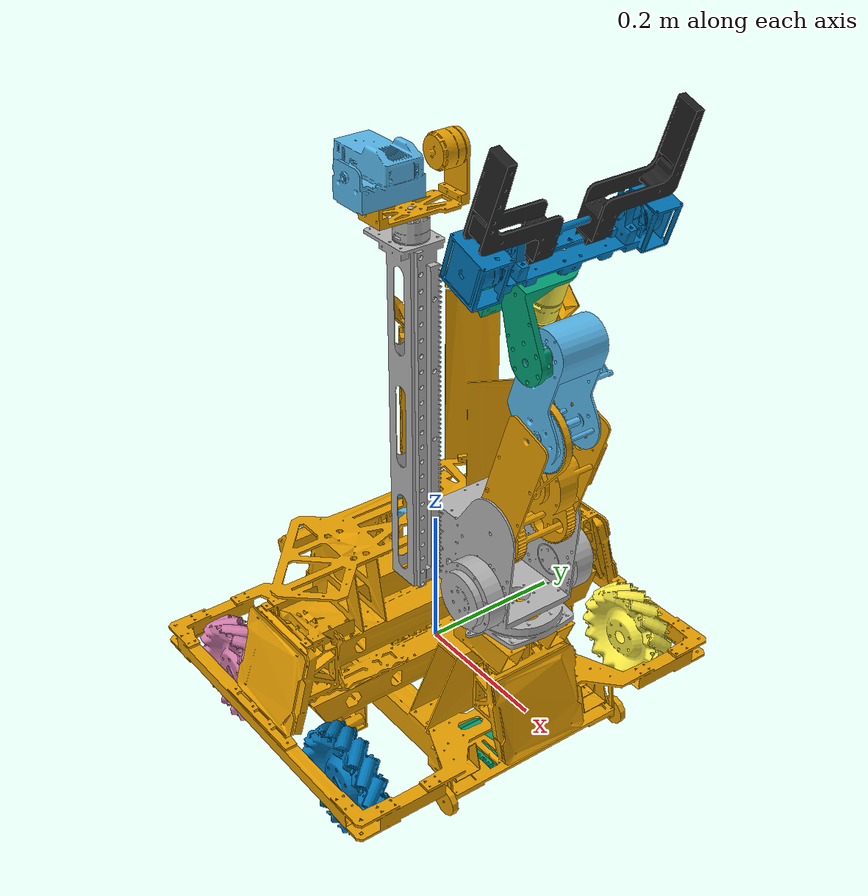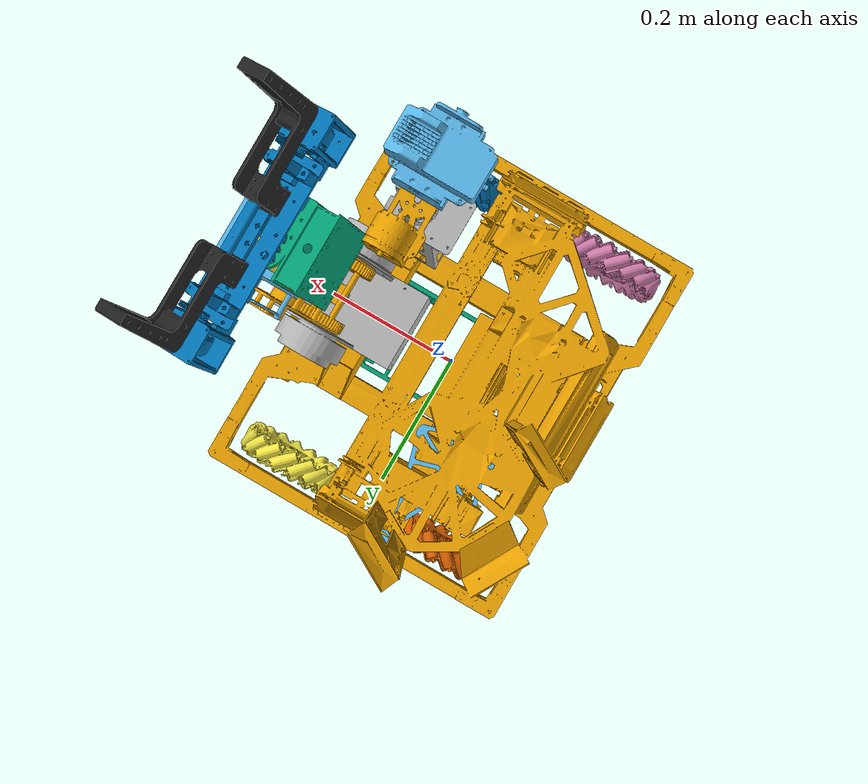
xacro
<?xml version="1.0"?>
<robot xmlns:xacro="http://www.ros.org/wiki/xacro" name="engineer">
    <xacro:arg name="load_chassis" default="true"/>
    <xacro:arg name="load_arm" default="true"/>
    <xacro:arg name="use_simulation" default="true"/>
    <xacro:arg name="roller_type" default="simple"/>

    <xacro:if value="$(arg load_chassis)">
        <xacro:include filename="$(find rm_description)/urdf/engineer/chassis.urdf.xacro"/>
        <xacro:chassis roller_type="$(arg roller_type)"/>
    </xacro:if>

    <xacro:if value="$(arg load_arm)">
        <xacro:include filename="$(find rm_description)/urdf/engineer/arm.urdf.xacro"/>
        <xacro:arm connected_to="base_link"/>
        <xacro:include filename="$(find rm_description)/urdf/engineer/arm.transmission.xacro"/>
        <xacro:arm_transmission simulation="$(arg use_simulation)"/>
        <xacro:include filename="$(find rm_description)/urdf/engineer/hand.urdf.xacro"/>
        <xacro:hand connected_to="link5" xyz="-0.014 0 0" rpy="0 0 0" simulation="$(arg use_simulation)"/>
        <xacro:include filename="$(find rm_description)/urdf/engineer/mast.urdf.xacro"/>
        <xacro:mast connected_to="link1" xyz="-0.0745 -0.1085 0.53" rpy="0 0 0" simulation="$(arg use_simulation)"/>
    </xacro:if>

    <xacro:if value="$(arg use_simulation)">
        <gazebo>
            <plugin name="rm_ros_control" filename="librm_robot_hw_sim.so">
                <robotNamespace>/</robotNamespace>
                <robotSimType>rm_gazebo/RmRobotHWSim</robotSimType>
            </plugin>
        </gazebo>
    </xacro:if>

</robot>

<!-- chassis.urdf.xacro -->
<robot xmlns:xacro="http://www.ros.org/wiki/xacro" name="chassis">

    <xacro:include filename="$(find rm_description)/urdf/common/mecanum_wheel.urdf.xacro"/>

    <!-- https://upload.wikimedia.org/wikipedia/commons/5/52/Wheelbase_and_Track.png -->
    <xacro:property name="wheel_front" value="0.134874"/>
    <xacro:property name="wheel_back" value="-0.134874"/>
    <xacro:property name="wheel_right" value="-0.2448"/>
    <xacro:property name="wheel_left" value="0.2448"/>
    <xacro:property name="wheel_offset_z" value="-0.029928"/>
    <xacro:property name="wheel_joint_damping" value="1.0"/>
    <xacro:property name="wheel_joint_friction" value="1.0"/>

    <xacro:macro name="chassis" params="roller_type">

        <link name="base_link">
            <inertial>
                <mass value="13"/>
                <origin xyz="-0.063 -0.010 -0.027"/>
                <inertia ixx="4.302e-2" ixy="7.618e-4" ixz="6.881e-3" iyy="3.95e-2"
                         iyz="-1.841e-4" izz="7.25e-2"/>
            </inertial>
            <visual>
                <origin xyz="0 0 0" rpy="0 0 0"/>
                <geometry>
                    <mesh filename="package://rm_description/meshes/engineer/base.stl" scale="0.001 .001 0.001"/>
                </geometry>
            </visual>
            <collision>
                <origin xyz="-0.125 0. 0.06" rpy="0 0 0"/>
                <geometry>
                    <box size="0.25 0.596 0.169"/>
                </geometry>
            </collision>
            <collision>
                <origin xyz="0.15 -0.15 0.015" rpy="0 0 0"/>
                <geometry>
                    <box size="0.255 0.29 0.06"/>
                </geometry>
            </collision>
            <collision>
                <origin xyz="0.15 0.144 0.015" rpy="0 0 0"/>
                <geometry>
                    <box size="0.255 0.29 0.06"/>
                </geometry>
            </collision>
            <collision>
                <origin xyz="0.16 0. 0.1" rpy="0 0 0"/>
                <geometry>
                    <box size="0.12 0.2 0.1"/>
                </geometry>
            </collision>

            <collision>
                <origin xyz="-0.038526 0.245965 0.224" rpy="0 0 -0.507"/>
                <geometry>
                    <box size="0.08 0.024213 0.448"/>
                </geometry>
            </collision>
            <collision>
                <origin xyz="-0.160269 0.184128 0.284" rpy="0 0 1.0646508"/>
                <geometry>
                    <box size="0.08 0.0217 0.3033"/>
                </geometry>
            </collision>
            <collision>
                <origin xyz="-0.148196 0.0485 0.224" rpy="0 0 -0.507"/>
                <geometry>
                    <box size="0.08 0.03 0.448"/>
                </geometry>
            </collision>
            <collision>
                <origin xyz="0.019028 0.084742 0.269" rpy="0 0 1.0646508"/>
                <geometry>
                    <box size="0.080 0.003 0.250"/>
                </geometry>
            </collision>
        </link>

        <link name="stone_platform">
            <inertial>
                <mass value="0.073"/>
                <origin xyz="-0.037 -0.005 0.009"/>
                <inertia ixx="5.874e-4" ixy="-2.845e-4" ixz="1.882e-5" iyy="2.133e-4" iyz="2.682e-5" izz="7.780e-4"/>
            </inertial>
            <visual>
                <origin xyz="0 0 0" rpy="0 0 0"/>
                <geometry>
                    <mesh filename="package://rm_description/meshes/engineer/stone_platform.stl"
                          scale="0.001 0.001 0.001"/>
                </geometry>
            </visual>
            <collision>
                <origin xyz="0.0 0.0 0.0" rpy="0 0.0 0"/>
                <geometry>
                    <box size="0.106 0.105 0.002"/>
                </geometry>
            </collision>
            <collision>
                <origin xyz="-0.08 -0.09 0.02" rpy="0 0 1.0646508"/>
                <geometry>
                    <box size="0.03 0.06 0.05"/>
                </geometry>
            </collision>
        </link>

        <link name="card">
            <inertial>
                <mass value="0.26"/>
                <origin xyz="-0.071 -0.006 0.003"/>
                <inertia ixx="1.078e-3" ixy="6.486e-5" ixz="1.454e-5" iyy="1.142e-4" iyz="5.143e-6" izz="2.215e-3"/>
            </inertial>
            <visual>
                <origin xyz="0 0 0" rpy="0 0 0"/>
                <geometry>
                    <mesh filename="package://rm_description/meshes/engineer/card.stl" scale="0.001 0.001 0.001"/>
                </geometry>
            </visual>
            <collision>
                <origin xyz="-0.08 0 0" rpy="0 0.0 0"/>
                <geometry>
                    <box size="0.253 0.151 0.011"/>
                </geometry>
            </collision>
        </link>

        <joint name="card_joint" type="prismatic">
            <axis xyz="1 0 0"/>
            <origin xyz="0.15205 0. -0.07"/>
            <limit effort="20.0" velocity="1.0" lower="0" upper="0.281"/>
            <dynamics damping="0.0" friction="0.1"/>
            <parent link="base_link"/>
            <child link="card"/>
        </joint>

        <joint name="stone_platform_joint" type="prismatic">
            <axis xyz="0 0 1"/>
            <origin xyz="-0.0706 0.134 0.114"/>
            <limit effort="20.0" velocity="1.0" lower="0" upper="0.19"/>
            <dynamics damping="0.0" friction="0.1"/>
            <parent link="base_link"/>
            <child link="stone_platform"/>
        </joint>

        <transmission name="trans_stone_platform_joint">
            <type>transmission_interface/SimpleTransmission</type>
            <actuator name="stone_platform_joint_motor">
                <mechanicalReduction>49.97</mechanicalReduction>
            </actuator>
            <joint name="stone_platform_joint">
                <hardwareInterface>hardware_interface/EffortJointInterface</hardwareInterface>
                <offset>0</offset>
            </joint>
        </transmission>

        <transmission name="trans_card_joint">
            <type>transmission_interface/SimpleTransmission</type>
            <actuator name="card_joint_motor">
                <mechanicalReduction>49.97</mechanicalReduction>
            </actuator>
            <joint name="card_joint">
                <hardwareInterface>hardware_interface/EffortJointInterface</hardwareInterface>
                <offset>0</offset>
            </joint>
        </transmission>

        <xacro:mecanum_wheel prefix="left_front" connected_to="base_link"
                             wheel_x_offset="${wheel_front}" wheel_y_offset="${wheel_left}"
                             wheel_z_offset="${wheel_offset_z}"
                             reflect="1" roller_type="${roller_type}"/>
        <xacro:mecanum_wheel prefix="right_front" connected_to="base_link"
                             wheel_x_offset="${wheel_front}" wheel_y_offset="${wheel_right}"
                             wheel_z_offset="${wheel_offset_z}"
                             reflect="-1" roller_type="${roller_type}"/>
        <xacro:mecanum_wheel prefix="left_back" connected_to="base_link"
                             wheel_x_offset="${wheel_back}" wheel_y_offset="${wheel_left}"
                             wheel_z_offset="${wheel_offset_z}"
                             reflect="-1" roller_type="${roller_type}"/>
        <xacro:mecanum_wheel prefix="right_back" connected_to="base_link"
                             wheel_x_offset="${wheel_back}" wheel_y_offset="${wheel_right}"
                             wheel_z_offset="${wheel_offset_z}"
                             reflect="1" roller_type="${roller_type}"/>
        <xacro:wheel_transmission prefix="left_front" mechanical_reduction="19.2032"/>
        <xacro:wheel_transmission prefix="right_front" mechanical_reduction="-19.2032"/>
        <xacro:wheel_transmission prefix="left_back" mechanical_reduction="19.2032"/>
        <xacro:wheel_transmission prefix="right_back" mechanical_reduction="-19.2032"/>

    </xacro:macro>

</robot>

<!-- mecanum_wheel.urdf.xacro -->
<robot xmlns:xacro="http://www.ros.org/wiki/xacro" name="mecanum_wheel">

    <xacro:property name="wheel_radius" value="0.07625"/>
    <xacro:property name="roller_radius" value="0.009"/>
    <xacro:property name="wheel_joint_effort" value="10"/>
    <xacro:property name="wheel_joint_velocity" value="70"/>

    <xacro:macro name="roller" params="prefix suffix theta roller_type">
        <!-- rotation math: roller_joint_axis -->
        <xacro:property name="sqrt_2_2" value="${sqrt(2)/2}"/>
        <xacro:property name="roller_joint_axis_x" value="${cos(theta) * sqrt_2_2}"/>
        <xacro:property name="roller_joint_axis_y" value="${-reflect * sqrt_2_2}"/>
        <xacro:property name="roller_joint_axis_z" value="${sin(theta) * sqrt_2_2}"/>
        <!-- rotation math: get quaternion between x_axis (1,0,0) and roller_joint_axis
        https://stackoverflow.com/questions/1171849/finding-quaternion-representing-the-rotation-from-one-vector-to-another -->
        <xacro:property name="quat_x" value="${0}"/>
        <xacro:property name="quat_y" value="${roller_joint_axis_z}"/>
        <xacro:property name="quat_z" value="${-roller_joint_axis_y}"/>
        <xacro:property name="quat_w" value="${-(1+roller_joint_axis_x)}"/>
        <xacro:property name="quat_length" value="${sqrt(quat_y*quat_y + quat_z * quat_z+quat_w * quat_w)}"/>
        <xacro:property name="quat_normal_x" value="${0}"/>
        <xacro:property name="quat_normal_y" value="${quat_y/quat_length}"/>
        <xacro:property name="quat_normal_z" value="${quat_z/quat_length}"/>
        <xacro:property name="quat_normal_w" value="${quat_w/quat_length}"/>

        <!--  link  -->
        <link name="${prefix}_roller_${suffix}">
            <collision>
                <xacro:if value="${roller_type=='realistic'}">
                    <!--  quat_xyzw dosen't work ?! covert to rpy-->
                    <origin rpy="${atan2(2. * (quat_normal_w * quat_normal_x + quat_normal_y * quat_normal_z),
                              1. - 2. * (quat_normal_x * quat_normal_x + quat_normal_y * quat_normal_y))}
                     ${asin(2. * (quat_normal_w * quat_normal_y - quat_normal_z * quat_normal_x))}
                     ${atan2(2. * (quat_normal_w * quat_normal_z + quat_normal_x * quat_normal_y),
                              1. - 2. * (quat_normal_y * quat_normal_y + quat_normal_z * quat_normal_z))}"
                            xyz="0 0 0"/>
                    <geometry>
                        <mesh filename="package://rm_description/meshes/common/roller.stl" scale="0.001 0.001 0.001"/>
                    </geometry>
                </xacro:if>
                <xacro:if value="${roller_type=='simple'}">
                    <geometry>
                        <sphere radius="${roller_radius}"/>
                    </geometry>
                </xacro:if>
            </collision>
            <inertial>
                <mass value="0.036"/>
                <inertia ixx="3128e-9" ixy="0.0" ixz="0.0" iyy="3128e-9" iyz="0.0" izz="3128e-9"/>
            </inertial>
        </link>

        <joint name="${prefix}_roller_${suffix}_joint" type="continuous">
            <origin
                    xyz="${(wheel_radius-roller_radius)*cos(theta-pi/2)} 0 ${(wheel_radius-roller_radius)*sin(theta-pi/2)}"
                    rpy="0 0 0"/>
            <axis xyz="${roller_joint_axis_x} ${roller_joint_axis_y} ${roller_joint_axis_z}"/>
            <dynamics damping="0.0" friction="0.001"/>
            <parent link="${prefix}_wheel"/>
            <child link="${prefix}_roller_${suffix}"/>
        </joint>

        <gazebo reference="${prefix}_roller_${suffix}">
            <mu1 value="2000.0"/>
            <mu2 value="2000.0"/>
            <kp value="1000000.0"/>
            <kd value="100.0"/>
            <material>Gazebo/Black</material>
        </gazebo>

    </xacro:macro>

    <xacro:macro name="mecanum_wheel"
                 params="prefix connected_to wheel_x_offset wheel_y_offset wheel_z_offset reflect roller_type">
        <!--  link  -->
        <link name="${prefix}_wheel">
            <visual>
                <geometry>
                    <xacro:if value="${reflect == 1}">
                        <mesh filename="package://rm_description/meshes/common/right_threaded_mecanum_wheel.stl"
                              scale="0.001 0.001 0.001"/>
                    </xacro:if>
                    <xacro:if value="${reflect == -1}">
                        <mesh filename="package://rm_description/meshes/common/left_threaded_mecanum_wheel.stl"
                              scale="0.001 0.001 0.001"/>
                    </xacro:if>
                </geometry>
            </visual>
            <inertial>
                <mass value="0.59"/>
                <inertia ixx="1.416e-3" ixy="0.0" ixz="0.0" iyy="2.749e-3" iyz="0.0" izz="1.416e-3"/>
            </inertial>
        </link>

        <!--  joint  -->
        <joint name="${prefix}_wheel_joint" type="revolute">
            <axis xyz="0 1 0"/>
            <origin xyz="${wheel_x_offset} ${wheel_y_offset} ${wheel_offset_z}" rpy="0 0 0"/>
            <!--      limit not work while type="continuous"-->
            <limit effort="${wheel_joint_effort}" velocity="${wheel_joint_velocity}" lower="-1e9" upper="1e9"/>
            <dynamics damping="0.0" friction="0.05"/>
            <parent link="${connected_to}"/>
            <child link="${prefix}_wheel"/>
        </joint>

        <xacro:unless value="${roller_type=='none'}">
            <!-- 16 roller  2pi/16=0.393-->
            <xacro:roller prefix="${prefix}" suffix="0" theta="${0*0.393}" roller_type="${roller_type}"/>
            <xacro:roller prefix="${prefix}" suffix="1" theta="${1*0.393}" roller_type="${roller_type}"/>
            <xacro:roller prefix="${prefix}" suffix="2" theta="${2*0.393}" roller_type="${roller_type}"/>
            <xacro:roller prefix="${prefix}" suffix="3" theta="${3*0.393}" roller_type="${roller_type}"/>
            <xacro:roller prefix="${prefix}" suffix="4" theta="${4*0.393}" roller_type="${roller_type}"/>
            <xacro:roller prefix="${prefix}" suffix="5" theta="${5*0.393}" roller_type="${roller_type}"/>
            <xacro:roller prefix="${prefix}" suffix="6" theta="${6*0.393}" roller_type="${roller_type}"/>
            <xacro:roller prefix="${prefix}" suffix="7" theta="${7*0.393}" roller_type="${roller_type}"/>
            <xacro:roller prefix="${prefix}" suffix="8" theta="${8*0.393}" roller_type="${roller_type}"/>
            <xacro:roller prefix="${prefix}" suffix="9" theta="${9*0.393}" roller_type="${roller_type}"/>
            <xacro:roller prefix="${prefix}" suffix="10" theta="${10*0.393}" roller_type="${roller_type}"/>
            <xacro:roller prefix="${prefix}" suffix="11" theta="${11*0.393}" roller_type="${roller_type}"/>
            <xacro:roller prefix="${prefix}" suffix="12" theta="${12*0.393}" roller_type="${roller_type}"/>
            <xacro:roller prefix="${prefix}" suffix="13" theta="${13*0.393}" roller_type="${roller_type}"/>
            <xacro:roller prefix="${prefix}" suffix="14" theta="${14*0.393}" roller_type="${roller_type}"/>
            <xacro:roller prefix="${prefix}" suffix="15" theta="${15*0.393}" roller_type="${roller_type}"/>
        </xacro:unless>

    </xacro:macro>

    <xacro:macro name="wheel_transmission" params="prefix mechanical_reduction">
        <transmission name="${prefix}_wheel_trans">
            <type>transmission_interface/SimpleTransmission</type>
            <actuator name="${prefix}_wheel_motor">
                <hardwareInterface>hardware_interface/EffortJointInterface</hardwareInterface>
                <mechanicalReduction>${mechanical_reduction}</mechanicalReduction>
            </actuator>
            <joint name="${prefix}_wheel_joint">
                <hardwareInterface>hardware_interface/EffortJointInterface</hardwareInterface>
            </joint>
        </transmission>
    </xacro:macro>

</robot>

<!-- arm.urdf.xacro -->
<robot xmlns:xacro="http://www.ros.org/wiki/xacro" name="arm">

    <xacro:macro name="arm" params="connected_to">
        <xacro:property name="threshold" value="0.1"/>
        <xacro:property name="joint1_lower_limit" value="-4.0246823"/>
        <xacro:property name="joint1_upper_limit" value="2.05507607"/>
        <xacro:property name="joint2_lower_limit" value="-2.378679831401"/>
        <xacro:property name="joint2_upper_limit" value="-0.0989819625299"/>
        <xacro:property name="joint3_lower_limit" value="-0.88921949"/>
        <xacro:property name="joint3_upper_limit" value="2.535032168"/>
        <xacro:property name="joint4_lower_limit" value="-0.2989008"/>
        <xacro:property name="joint4_upper_limit" value="2.614725376878"/>
        <xacro:property name="joint5_lower_limit" value="-4.27171178"/>
        <xacro:property name="joint5_upper_limit" value="1.40800999"/>

        <!--  link  -->
        <link name="link1">
            <inertial>
                <mass value="1.768"/>
                <origin xyz="-0.005 0.046 0.0"/>
                <inertia ixx="9.816e-3" ixy="-2.523e-4" ixz="7.839e-6" iyy="9.203e-3" iyz="9.389e-5" izz="3.735e-3"/>
            </inertial>
            <visual>
                <origin xyz="0 0 0" rpy="0 0 0"/>
                <geometry>
                    <mesh filename="package://rm_description/meshes/engineer/link1.stl" scale="0.001 0.001 0.001"/>
                </geometry>
            </visual>
            <collision>
                <origin xyz="-0.022768 -0.000245 0.034512" rpy="0 0 0"/>
                <geometry>
                    <box size="0.088 0.142 0.106"/>
                </geometry>
            </collision>
            <collision>
                <origin xyz="0.001 -0.000245 0.04" rpy="1.57 0 0"/>
                <geometry>
                    <cylinder length="0.19" radius="0.047"/>
                </geometry>
            </collision>
        </link>

        <link name="link2">
            <inertial>
                <mass value="1.256"/>
                <origin xyz="0.057 0.002 0"/>
                <inertia ixx="1.678e-3" ixy="1.267e-5" ixz="-4.26e-7" iyy="3.761e-3" iyz="1.345e-6" izz="4.111e-3"/>
            </inertial>
            <visual>
                <origin xyz="0 0 0" rpy="0 0 0"/>
                <geometry>
                    <mesh filename="package://rm_description/meshes/engineer/link2.stl" scale="0.001 0.001 0.001"/>
                </geometry>
            </visual>
            <collision>
                <origin xyz="0.072 0 0"/>
                <geometry>
                    <box size="0.215 0.096 0.075"/>
                </geometry>
            </collision>
            <collision>
                <origin xyz="0.165 0 0" rpy="1.5707963 0 0"/>
                <geometry>
                    <cylinder length="0.096" radius="0.047"/>
                </geometry>
            </collision>
        </link>

        <link name="link3">
            <inertial>
                <mass value="1.139"/>
                <origin xyz="0.081 -0.0 0.022"/>
                <inertia ixx="9.633e-4" ixy="-2.836e-4" ixz="-5.244e-4" iyy="2.739e-3" iyz="-8.552e-5" izz="2.963e-3"/>
            </inertial>
            <visual>
                <origin xyz="0 0 0" rpy="0 0 0"/>
                <geometry>
                    <mesh filename="package://rm_description/meshes/engineer/link3.stl" scale="0.001 0.001 0.001"/>
                </geometry>
            </visual>
            <collision>
                <origin xyz="0.006 0 0.007" rpy="0 0.8726 0"/>
                <geometry>
                    <box size="0.072 0.066 0.072"/>
                </geometry>
            </collision>
            <collision>
                <origin xyz="0.066 0 0.027"/>
                <geometry>
                    <box size="0.135 0.066 0.062"/>
                </geometry>
            </collision>
        </link>

        <link name="link4">
            <inertial>
                <mass value="0.362"/>
                <origin xyz="0.035 -0.027 0.06"/>
                <inertia ixx="8.647e-4" ixy="-5.427e-5" ixz="-1.425e-4" iyy="8.477e-4" iyz="-2.555e-4" izz="5.668e-4"/>
            </inertial>
            <visual>
                <origin xyz="0 0 0" rpy="0 0 0"/>
                <geometry>
                    <mesh filename="package://rm_description/meshes/engineer/link4.stl" scale="0.001 0.001 0.001"/>
                </geometry>
            </visual>
            <collision>
                <origin xyz="0.02 -0.015 0.017" rpy="0 0.8028 0"/>
                <geometry>
                    <box size="0.0582 0.092 0.099"/>
                </geometry>
            </collision>
            <collision>
                <origin xyz="0.0347 -0.015 0.071"/>
                <geometry>
                    <box size="0.08 0.094 0.083"/>
                </geometry>
            </collision>
        </link>

        <link name="link5">
            <inertial>
                <mass value="0.85"/>
                <origin xyz="-0.061 0.0 0.0"/>
                <inertia ixx="1.761e-4" ixy="6.99e-7" ixz="1.26e-7" iyy="5.874e-4" iyz="2.72e-7" izz="5.863e-4"/>
            </inertial>
            <visual>
                <origin xyz="0 0 0" rpy="0 0 0"/>
                <geometry>
                    <mesh filename="package://rm_description/meshes/engineer/link5.stl" scale="0.001 0.001 0.001"/>
                </geometry>
            </visual>
        </link>

        <!--  joint  -->
        <joint name="joint1" type="revolute">
            <axis xyz="0 0 1"/>
            <origin xyz="0.175 0 0.174" rpy="0 0 0"/>
            <!--      limit not work while type="continuous"-->
            <limit effort="20" velocity="13" lower="${joint1_lower_limit}" upper="${joint1_upper_limit}"/>
            <safety_controller k_position="37.5" k_velocity="10"
                               soft_lower_limit="${joint1_lower_limit+threshold}"
                               soft_upper_limit="${joint1_upper_limit-threshold}"/>
            <dynamics damping="0.0" friction="0.1"/>
            <parent link="${connected_to}"/>
            <child link="link1"/>
        </joint>

        <joint name="joint2" type="revolute">
            <axis xyz="0 1 0"/>
            <origin xyz="0.005327 0 0.128" rpy="0 0 0"/>
            <limit effort="60" velocity="10" lower="${joint2_lower_limit}" upper="${joint2_upper_limit}"/>
            <safety_controller k_position="150" k_velocity="10"
                               soft_lower_limit="${joint2_lower_limit+threshold}"
                               soft_upper_limit="${joint2_upper_limit-threshold}"/>
            <dynamics damping="0.0" friction="0.8"/>
            <parent link="link1"/>
            <child link="link2"/>
        </joint>

        <joint name="joint3" type="revolute">
            <axis xyz="0 1 0"/>
            <origin xyz="0.165 0 0" rpy="0 0 0"/>
            <limit effort="30" velocity="10" lower="${joint3_lower_limit}" upper="${joint3_upper_limit}"/>
            <safety_controller k_position="100" k_velocity="6"
                               soft_lower_limit="${joint3_lower_limit+threshold}"
                               soft_upper_limit="${joint3_upper_limit-threshold}"/>
            <dynamics damping="0.0" friction="0.5"/>
            <parent link="link2"/>
            <child link="link3"/>
        </joint>

        <joint name="joint4" type="revolute">
            <axis xyz="0 1 0"/>
            <origin xyz="0.106 0 0.028"/>
            <limit effort="18.53" velocity="13.5" lower="${joint4_lower_limit}" upper="${joint4_upper_limit}"/>
            <safety_controller k_position="20" k_velocity="2.5"
                               soft_lower_limit="${joint4_lower_limit+threshold}"
                               soft_upper_limit="${joint4_upper_limit-threshold}"/>
            <dynamics damping="0.0" friction="0.5"/>
            <parent link="link3"/>
            <child link="link4"/>
        </joint>

        <joint name="joint5" type="revolute">
            <axis xyz="1 0 0"/>
            <origin xyz="0.097 0 0.055"/>
            <limit effort="13" velocity="18" lower="${joint5_lower_limit}" upper="${joint5_upper_limit}"/>
            <safety_controller k_position="20" k_velocity="5"
                               soft_lower_limit="${joint5_lower_limit+threshold}"
                               soft_upper_limit="${joint5_upper_limit-threshold}"/>
            <dynamics damping="0.0" friction="0.5"/>
            <parent link="link4"/>z
            <child link="link5"/>
        </joint>

    </xacro:macro>
</robot>

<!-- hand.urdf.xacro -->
<robot xmlns:xacro="http://www.ros.org/wiki/xacro" name="hand">
    <!-- safety_distance: Minimum safety distance in [m] by which the collision volumes are expanded and which is enforced during robot motions -->
    <xacro:macro name="hand" params="connected_to:='' xyz:='0 0 0' rpy:='0 0 0' simulation ">

        <material name="Black">
            <color rgba="0 0 0 1"/>
        </material>

        <material name="White">
            <color rgba="1 1 1 1"/>
        </material>

        <link name="palm">
            <inertial>
                <mass value="0.705"/>
                <origin xyz="0.0 0.0 0" rpy="0 0 0"/>
                <inertia ixx="1.483e-3" ixy="-3.268e-4" ixz="-1.279015e-5" iyy="1.014e-4" iyz="-5.7349231e-5"
                         izz="1.553e-3"/>
            </inertial>
            <visual>
                <geometry>
                    <mesh filename="package://rm_description/meshes/engineer/palm.stl" scale="0.001 0.001 0.001"/>
                </geometry>
            </visual>
            <collision>
                <origin xyz="0.026 0. 0." rpy="0 0 0"/>
                <geometry>
                    <box size="0.056 0.2748 0.062"/>
                </geometry>
            </collision>
            <collision>
                <origin xyz="0.023 0.117985 0." rpy="0 0 0"/>
                <geometry>
                    <box size="0.064 0.045 0.09"/>
                </geometry>
            </collision>

        </link>
        <gazebo reference="palm">
            <self_collide>1</self_collide>
        </gazebo>

        <link name="right_finger">
            <inertial>
                <origin xyz="0.015044 -0.0622 8e-6" rpy="0 0 0"/>
                <mass value="0.211439"/>
                <inertia ixx="1.107e-3" ixy="4.148e-4" ixz="4.1265e-8" iyy="3.139e-4" iyz="7.1221e-8" izz="1.39e-3"/>
            </inertial>
            <visual>
                <geometry>
                    <mesh filename="package://rm_description/meshes/engineer/right_finger.stl"
                          scale="0.001 0.001 0.001"/>
                </geometry>
            </visual>
            <collision>
                <origin xyz="0.066 -0.126453 0.0" rpy="0 0 0"/>
                <geometry>
                    <box size="0.113 0.0178 0.036"/>
                </geometry>
            </collision>
        </link>

        <link name="left_finger">
            <inertial>
                <origin xyz="0.015 0.062 8e-6" rpy="0 0 0"/>
                <mass value="0.211439"/>
                <inertia ixx="1.107e-3" ixy="-4.148e-4" ixz="4.1265e-8" iyy="3.139e-4" iyz="-0.071221e-8"
                         izz="1.39e-3"/>
            </inertial>
            <visual>
                <geometry>
                    <mesh filename="package://rm_description/meshes/engineer/left_finger.stl"
                          scale="0.001 0.001 0.001"/>
                </geometry>
            </visual>
            <collision>
                <origin xyz="0.068474 0.126453 0.0" rpy="0 0 0"/>
                <geometry>
                    <box size="0.113 0.0178 0.036"/>
                </geometry>
            </collision>
        </link>

        <xacro:unless value="${connected_to == ''}">
            <joint name="palm_joint" type="fixed">
                <parent link="${connected_to}"/>
                <child link="palm"/>
                <origin xyz="${xyz}" rpy="${rpy}"/>
            </joint>
        </xacro:unless>

        <joint name="right_finger_joint" type="prismatic">
            <parent link="palm"/>
            <child link="right_finger"/>
            <origin xyz="0.045 0 0" rpy="0 0 0"/>
            <axis xyz="0 1 0"/>
            <limit effort="150" lower="-0.04" upper="0.0" velocity="3.772"/>
        </joint>

        <joint name="left_finger_joint" type="prismatic">
            <parent link="palm"/>
            <child link="left_finger"/>
            <origin xyz="0.045 0 0" rpy="0 0 0"/>
            <axis xyz="0 -1 0"/>
            <limit effort="150" lower="-0.04" upper="0.0" velocity="3.772"/>
            <mimic joint="right_finger_joint"/>
        </joint>

        <xacro:if value="${simulation}">
            <gazebo>
                <plugin name="left_finger_mimic_joint_plugin"
                        filename="libroboticsgroup_upatras_gazebo_mimic_joint_plugin.so">
                    <joint>right_finger_joint</joint>
                    <mimicJoint>left_finger_joint</mimicJoint>
                    <hasPID/>
                    <maxEffort>588.0</maxEffort>
                </plugin>
            </gazebo>
            <gazebo reference="right_finger">
                <self_collide>1</self_collide>
                <mu1 value="2000"/>
                <mu2 value="2000"/>
                <kp value="1000000.0"/>
                <kd value="100.0"/>
                <maxContacts>2</maxContacts>
                <material>Gazebo/Black</material>
            </gazebo>
            <gazebo reference="left_finger">
                <mu1 value="2000"/>
                <mu2 value="2000"/>
                <kp value="1000000.0"/>
                <kd value="100.0"/>
                <maxContacts>2</maxContacts>
                <material>Gazebo/Black</material>
            </gazebo>
        </xacro:if>

        <transmission name="trans_right_finger_joint">
            <type>transmission_interface/SimpleTransmission</type>
            <joint name="right_finger_joint">
                <hardwareInterface>hardware_interface/EffortJointInterface</hardwareInterface>
                <offset>0.0</offset>
            </joint>
            <actuator name="right_finger_joint_motor">
                <mechanicalReduction>-2356.194</mechanicalReduction>
            </actuator>
        </transmission>

    </xacro:macro>
</robot>

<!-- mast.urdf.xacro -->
<robot xmlns:xacro="http://www.ros.org/wiki/xacro" name="mast">
    <!-- safety_distance: Minimum safety distance in [m] by which the collision volumes are expanded and which is enforced during robot motions -->
    <xacro:macro name="mast" params="connected_to:='' xyz:='0 0 0' rpy:='0 0 0' simulation">

        <link name="mast">
            <inertial>
                <mass value="0.517"/>
                <origin xyz="0.009 -0.002 -0.190" rpy="0 0 0"/>
                <inertia ixx="1.221e-2" ixy="1.727e-5" ixz="6.890e-4" iyy="1.237e-2" iyz="-7.284e-5" izz="3.043e-4"/>
            </inertial>
            <visual>
                <geometry>
                    <mesh filename="package://rm_description/meshes/engineer/mast.stl" scale="0.001 0.001 0.001"/>
                </geometry>
            </visual>
            <collision>
                <origin xyz="0.004 0 -0.259" rpy="0 0 0"/>
                <geometry>
                    <box size="0.035 0.035 0.45"/>
                </geometry>
            </collision>
            <collision>
                <origin xyz="0. 0.004 0.04" rpy="0 0 0"/>
                <geometry>
                    <cylinder length="0.1" radius="0.07"/>
                </geometry>
            </collision>
        </link>

        <link name="yaw">
            <inertial>
                <origin xyz="0.0 0.029 0.035" rpy="0 0 0"/>
                <mass value="0.175"/>
                <inertia ixx="3.583e-4" ixy="-4.2e-7" ixz="2.42e-7" iyy="1.473e-4" iyz="-4.618e-5" izz="2.568e-4"/>
            </inertial>
            <visual>
                <geometry>
                    <mesh filename="package://rm_description/meshes/engineer/yaw.stl" scale="0.001 0.001 0.001"/>
                </geometry>
            </visual>
        </link>

        <link name="pitch">
            <inertial>
                <origin xyz="0.0 -0.04 0.002" rpy="0 0 0"/>
                <mass value="0.246"/>
                <inertia ixx="1.883e-4" ixy="1.22e-7" ixz="-7.56e-6" iyy="2.304e-4" iyz="-2.18e-7" izz="2.662e-4"/>
            </inertial>
            <visual>
                <geometry>
                    <mesh filename="package://rm_description/meshes/engineer/pitch.stl" scale="0.001 0.001 0.001"/>
                </geometry>
            </visual>
        </link>

        <xacro:unless value="${connected_to == ''}">
            <joint name="mast_joint" type="prismatic">
                <origin xyz="${xyz}" rpy="${rpy}"/>
                <parent link="${connected_to}"/>
                <child link="mast"/>
                <axis xyz="0 0 1"/>
                <dynamics damping="0.0" friction="0.8"/>
                <limit effort="25.0" velocity="1.0" lower="-0.37" upper="0"/>
            </joint>
        </xacro:unless>

        <joint name="yaw_joint" type="revolute">
            <origin xyz="0 0 0"
                    rpy="0 0 0"/>
            <dynamics damping="0.0" friction="0.1"/>
            <limit effort="0.2" velocity="10" lower="-0.6197" upper="3.4545"/>
            <parent link="mast"/>
            <child link="yaw"/>
            <axis xyz="0 0 1"/>
        </joint>

        <joint name="pitch_joint" type="revolute">
            <origin xyz="0.  0. 0.059 " rpy="0 0 0"/>
            <dynamics damping="0.0" friction="0.1"/>
            <limit effort="0.2" velocity="10" lower="-0.47247" upper="1.25862"/>
            <parent link="yaw"/>
            <child link="pitch"/>
            <axis xyz="0 1 0 "/>
        </joint>

        <gazebo reference="mast">
            <self_collide>1</self_collide>
        </gazebo>

        <transmission name="trans_yaw_joint">
            <type>transmission_interface/SimpleTransmission</type>
            <actuator name="yaw_joint_motor">
                <mechanicalReduction>-1</mechanicalReduction>
            </actuator>
            <joint name="yaw_joint">
                <offset>-0.60668</offset>
                <hardwareInterface>hardware_interface/EffortJointInterface</hardwareInterface>
            </joint>
        </transmission>

        <transmission name="trans_pitch_joint">
            <type>transmission_interface/SimpleTransmission</type>
            <actuator name="pitch_joint_motor">
                <mechanicalReduction>-1</mechanicalReduction>
            </actuator>
            <joint name="pitch_joint">
                <offset>1.26553</offset>
                <hardwareInterface>hardware_interface/EffortJointInterface</hardwareInterface>
            </joint>
        </transmission>

        <transmission name="trans_mast_joint">
            <type>transmission_interface/SimpleTransmission</type>
            <joint name="mast_joint">
                <hardwareInterface>hardware_interface/EffortJointInterface</hardwareInterface>
                <offset>0.0</offset>
            </joint>
            <actuator name="mast_joint_motor">
                <mechanicalReduction>-50.0</mechanicalReduction>
            </actuator>
        </transmission>

    </xacro:macro>
</robot>
